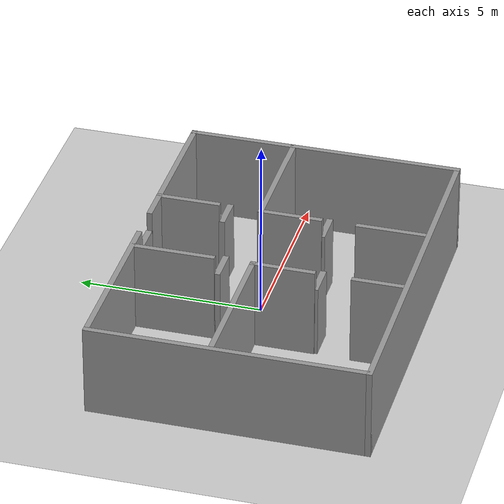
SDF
<?xml version='1.0'?>
<sdf version='1.7'>
  <world name='four_rooms_world'>
    <!-- Physics settings -->
    <physics name='default_physics' default='0' type='ode'>
      <gravity>0 0 -9.8066</gravity>
      <ode>
        <solver>
          <type>quick</type>
          <iters>150</iters>
          <sor>1.3</sor>
        </solver>
        <constraints>
          <cfm>0.00001</cfm>
          <erp>0.2</erp>
          <contact_max_correcting_vel>1000</contact_max_correcting_vel>
          <contact_surface_layer>0.01</contact_surface_layer>
        </constraints>
      </ode>
      <max_step_size>0.004</max_step_size>
      <real_time_factor>1</real_time_factor>
      <real_time_update_rate>250</real_time_update_rate>
    </physics>

    <!-- Scene settings -->
    <scene>
      <ambient>0.4 0.4 0.4 1</ambient>
      <background>0.7 0.7 0.7 1</background>
      <shadows>1</shadows>
    </scene>

    <!-- Lighting -->
    <light name='sun' type='directional'>
      <cast_shadows>1</cast_shadows>
      <pose>0 0 10 0 -0 0</pose>
      <diffuse>0.8 0.8 0.8 1</diffuse>
      <specular>0.2 0.2 0.2 1</specular>
      <attenuation>
        <range>1000</range>
        <constant>0.9</constant>
        <linear>0.01</linear>
        <quadratic>0.001</quadratic>
      </attenuation>
      <direction>-0.5 0.1 -0.9</direction>
    </light>

    <!-- Ground plane -->
    <model name='ground_plane'>
      <static>1</static>
      <link name='link'>
        <collision name='collision'>
          <geometry>
            <plane>
              <normal>0 0 1</normal>
              <size>100 100</size>
            </plane>
          </geometry>
          <surface>
            <contact>
              <collide_bitmask>65535</collide_bitmask>
              <ode/>
            </contact>
            <friction>
              <ode>
                <mu>100</mu>
                <mu2>50</mu2>
              </ode>
            </friction>
          </surface>
        </collision>
        <visual name='visual'>
          <cast_shadows>0</cast_shadows>
          <geometry>
            <plane>
              <normal>0 0 1</normal>
              <size>100 100</size>
            </plane>
          </geometry>
          <material>
            <script>
              <uri>file://media/materials/scripts/gazebo.material</uri>
              <name>Gazebo/Grey</name>
            </script>
          </material>
        </visual>
      </link>
    </model>

    <!-- Four rooms model -->
    <model name='four_rooms'>
      <pose>-0.595 -0.605 0 0 -0 0</pose>
      <link name='Door_0'>
        <collision name='Door_0_Collision'>
          <geometry>
            <box>
              <size>0.9 0.17 2</size>
            </box>
          </geometry>
          <pose>0 0 1 0 -0 0</pose>
        </collision>
        <visual name='Door_0_Visual'>
          <pose>0 0 1 0 -0 0</pose>
          <geometry>
            <box>
              <size>0.9 0.17 2</size>
            </box>
          </geometry>
          <material>
            <script>
              <uri>file://media/materials/scripts/gazebo.material</uri>
              <name>Gazebo/Grey</name>
            </script>
          </material>
        </visual>
        <pose>0.136092 3.66682 0 0 -0 0</pose>
      </link>
      <link name='Door_1'>
        <collision name='Door_1_Collision'>
          <geometry>
            <box>
              <size>0.9 0.17 2</size>
            </box>
          </geometry>
          <pose>0 0 1 0 -0 0</pose>
        </collision>
        <visual name='Door_1_Visual'>
          <pose>0 0 1 0 -0 0</pose>
          <geometry>
            <box>
              <size>0.9 0.17 2</size>
            </box>
          </geometry>
          <material>
            <script>
              <uri>file://media/materials/scripts/gazebo.material</uri>
              <name>Gazebo/Grey</name>
            </script>
          </material>
        </visual>
        <pose>1.94491 1.93781 0 0 -0 0</pose>
      </link>
      <link name='Door_2'>
        <collision name='Door_2_Collision'>
          <geometry>
            <box>
              <size>0.9 0.17 2</size>
            </box>
          </geometry>
          <pose>0 0 1 0 -0 0</pose>
        </collision>
        <visual name='Door_2_Visual'>
          <pose>0 0 1 0 -0 0</pose>
          <geometry>
            <box>
              <size>0.9 0.17 2</size>
            </box>
          </geometry>
          <material>
            <script>
              <uri>file://media/materials/scripts/gazebo.material</uri>
              <name>Gazebo/Grey</name>
            </script>
          </material>
        </visual>
        <pose>-0.502313 1.3792 0 0 -0 0</pose>
      </link>
      <link name='Door_5'>
        <collision name='Door_5_Collision'>
          <geometry>
            <box>
              <size>0.9 0.17 2</size>
            </box>
          </geometry>
          <pose>0 0 1 0 -0 0</pose>
        </collision>
        <visual name='Door_5_Visual'>
          <pose>0 0 1 0 -0 0</pose>
          <geometry>
            <box>
              <size>0.9 0.17 2</size>
            </box>
          </geometry>
          <material>
            <script>
              <uri>file://media/materials/scripts/gazebo.material</uri>
              <name>Gazebo/Grey</name>
            </script>
          </material>
        </visual>
        <pose>-0.528913 -1.25422 0 0 -0 0</pose>
      </link>
      <link name='Door_6'>
        <collision name='Door_6_Collision'>
          <geometry>
            <box>
              <size>0.9 0.17 2</size>
            </box>
          </geometry>
          <pose>0 0 1 0 -0 0</pose>
        </collision>
        <visual name='Door_6_Visual'>
          <pose>0 0 1 0 -0 0</pose>
          <geometry>
            <box>
              <size>0.9 0.17 2</size>
            </box>
          </geometry>
          <material>
            <script>
              <uri>file://media/materials/scripts/gazebo.material</uri>
              <name>Gazebo/Grey</name>
            </script>
          </material>
        </visual>
        <pose>1.94491 -0.802013 0 0 -0 0</pose>
      </link>
      <link name='Wall_1'>
        <collision name='Wall_1_Collision'>
          <geometry>
            <box>
              <size>10 0.15 2.5</size>
            </box>
          </geometry>
          <pose>0 0 1.25 0 -0 0</pose>
        </collision>
        <visual name='Wall_1_Visual'>
          <pose>0 0 1.25 0 -0 0</pose>
          <geometry>
            <box>
              <size>10 0.15 2.5</size>
            </box>
          </geometry>
          <material>
            <script>
              <uri>file://media/materials/scripts/gazebo.material</uri>
              <name>Gazebo/Grey</name>
            </script>
            <ambient>1 1 1 1</ambient>
          </material>
          <meta>
            <layer>0</layer>
          </meta>
        </visual>
        <pose>0 -3.675 0 0 -0 0</pose>
      </link>
      <link name='Wall_10'>
        <collision name='Wall_10_Collision'>
          <geometry>
            <box>
              <size>4.75 0.15 2.5</size>
            </box>
          </geometry>
          <pose>0 0 1.25 0 -0 0</pose>
        </collision>
        <visual name='Wall_10_Visual'>
          <pose>0 0 1.25 0 -0 0</pose>
          <geometry>
            <box>
              <size>4.75 0.15 2.5</size>
            </box>
          </geometry>
          <material>
            <script>
              <uri>file://media/materials/scripts/gazebo.material</uri>
              <name>Gazebo/Grey</name>
            </script>
            <ambient>1 1 1 1</ambient>
          </material>
          <meta>
            <layer>0</layer>
          </meta>
        </visual>
        <pose>-2.625 3.675 0 0 -0 0</pose>
      </link>
      <link name='Wall_12'>
        <collision name='Wall_12_Collision'>
          <geometry>
            <box>
              <size>3.5 0.15 2.5</size>
            </box>
          </geometry>
          <pose>0 0 1.25 0 -0 0</pose>
        </collision>
        <visual name='Wall_12_Visual'>
          <pose>0 0 1.25 0 -0 0</pose>
          <geometry>
            <box>
              <size>3.5 0.15 2.5</size>
            </box>
          </geometry>
          <material>
            <script>
              <uri>file://media/materials/scripts/gazebo.material</uri>
              <name>Gazebo/Grey</name>
            </script>
            <ambient>1 1 1 1</ambient>
          </material>
          <meta>
            <layer>0</layer>
          </meta>
        </visual>
        <pose>3.25 3.675 0 0 -0 3.14159</pose>
      </link>
      <link name='Wall_14'>
        <collision name='Wall_14_Collision'>
          <geometry>
            <box>
              <size>1 0.15 2.5</size>
            </box>
          </geometry>
          <pose>0 0 1.25 0 -0 0</pose>
        </collision>
        <visual name='Wall_14_Visual'>
          <pose>0 0 1.25 0 -0 0</pose>
          <geometry>
            <box>
              <size>1 0.15 2.5</size>
            </box>
          </geometry>
          <material>
            <script>
              <uri>file://media/materials/scripts/gazebo.material</uri>
              <name>Gazebo/Grey</name>
            </script>
            <ambient>1 1 1 1</ambient>
          </material>
          <meta>
            <layer>0</layer>
          </meta>
        </visual>
        <pose>1.15 3.675 0 0 -0 3.14159</pose>
      </link>
      <link name='Wall_17'>
        <collision name='Wall_17_Collision'>
          <geometry>
            <box>
              <size>1.75 0.15 2.5</size>
            </box>
          </geometry>
          <pose>0 0 1.25 0 -0 0</pose>
        </collision>
        <visual name='Wall_17_Visual'>
          <pose>0 0 1.25 0 -0 0</pose>
          <geometry>
            <box>
              <size>1.75 0.15 2.5</size>
            </box>
          </geometry>
          <material>
            <script>
              <uri>file://media/materials/scripts/gazebo.material</uri>
              <name>Gazebo/Grey</name>
            </script>
            <ambient>1 1 1 1</ambient>
          </material>
          <meta>
            <layer>0</layer>
          </meta>
        </visual>
        <pose>1.575 2.875 0 0 -0 -1.5708</pose>
      </link>
      <link name='Wall_19'>
        <collision name='Wall_19_Collision'>
          <geometry>
            <box>
              <size>3.5 0.15 2.5</size>
            </box>
          </geometry>
          <pose>0 0 1.25 0 -0 0</pose>
        </collision>
        <visual name='Wall_19_Visual'>
          <pose>0 0 1.25 0 -0 0</pose>
          <geometry>
            <box>
              <size>3.5 0.15 2.5</size>
            </box>
          </geometry>
          <material>
            <script>
              <uri>file://media/materials/scripts/gazebo.material</uri>
              <name>Gazebo/Grey</name>
            </script>
            <ambient>1 1 1 1</ambient>
          </material>
          <meta>
            <layer>0</layer>
          </meta>
        </visual>
        <pose>3.22253 0.8738 0 0 -0 3.14159</pose>
      </link>
      <link name='Wall_23'>
        <collision name='Wall_23_Collision'>
          <geometry>
            <box>
              <size>2.25 0.15 2.5</size>
            </box>
          </geometry>
          <pose>0 0 1.25 0 -0 0</pose>
        </collision>
        <visual name='Wall_23_Visual'>
          <pose>0 0 1.25 0 -0 0</pose>
          <geometry>
            <box>
              <size>2.25 0.15 2.5</size>
            </box>
          </geometry>
          <material>
            <script>
              <uri>file://media/materials/scripts/gazebo.material</uri>
              <name>Gazebo/Grey</name>
            </script>
            <ambient>1 1 1 1</ambient>
          </material>
          <meta>
            <layer>0</layer>
          </meta>
        </visual>
        <pose>-0.927916 2.56362 0 0 -0 -1.5708</pose>
      </link>
      <link name='Wall_26'>
        <collision name='Wall_26_Collision'>
          <geometry>
            <box>
              <size>4 0.15 2.5</size>
            </box>
          </geometry>
          <pose>0 0 1.25 0 -0 0</pose>
        </collision>
        <visual name='Wall_26_Visual'>
          <pose>0 0 1.25 0 -0 0</pose>
          <geometry>
            <box>
              <size>4 0.15 2.5</size>
            </box>
          </geometry>
          <material>
            <script>
              <uri>file://media/materials/scripts/gazebo.material</uri>
              <name>Gazebo/Grey</name>
            </script>
            <ambient>1 1 1 1</ambient>
          </material>
          <meta>
            <layer>0</layer>
          </meta>
        </visual>
        <pose>-2.85292 0.421597 0 0 -0 3.14159</pose>
      </link>
      <link name='Wall_28'>
        <collision name='Wall_28_Collision'>
          <geometry>
            <box>
              <size>1.75 0.15 2.5</size>
            </box>
          </geometry>
          <pose>0 0 1.25 0 -0 0</pose>
        </collision>
        <visual name='Wall_28_Visual'>
          <pose>0 0 1.25 0 -0 0</pose>
          <geometry>
            <box>
              <size>1.75 0.15 2.5</size>
            </box>
          </geometry>
          <material>
            <script>
              <uri>file://media/materials/scripts/gazebo.material</uri>
              <name>Gazebo/Grey</name>
            </script>
            <ambient>1 1 1 1</ambient>
          </material>
          <meta>
            <layer>0</layer>
          </meta>
        </visual>
        <pose>-0.927916 -0.378403 0 0 -0 -1.5708</pose>
      </link>
      <link name='Wall_30'>
        <collision name='Wall_30_Collision'>
          <geometry>
            <box>
              <size>1.5 0.15 2.5</size>
            </box>
          </geometry>
          <pose>0 0 1.25 0 -0 0</pose>
        </collision>
        <visual name='Wall_30_Visual'>
          <pose>0 0 1.25 0 -0 0</pose>
          <geometry>
            <box>
              <size>1.5 0.15 2.5</size>
            </box>
          </geometry>
          <material>
            <script>
              <uri>file://media/materials/scripts/gazebo.material</uri>
              <name>Gazebo/Grey</name>
            </script>
            <ambient>1 1 1 1</ambient>
          </material>
          <meta>
            <layer>0</layer>
          </meta>
        </visual>
        <pose>-0.954516 -2.96662 0 0 -0 -1.5708</pose>
      </link>
      <link name='Wall_32'>
        <collision name='Wall_32_Collision'>
          <geometry>
            <box>
              <size>1.75 0.15 2.5</size>
            </box>
          </geometry>
          <pose>0 0 1.25 0 -0 0</pose>
        </collision>
        <visual name='Wall_32_Visual'>
          <pose>0 0 1.25 0 -0 0</pose>
          <geometry>
            <box>
              <size>1.75 0.15 2.5</size>
            </box>
          </geometry>
          <material>
            <script>
              <uri>file://media/materials/scripts/gazebo.material</uri>
              <name>Gazebo/Grey</name>
            </script>
            <ambient>1 1 1 1</ambient>
          </material>
          <meta>
            <layer>0</layer>
          </meta>
        </visual>
        <pose>1.54753 0.0738 0 0 -0 -1.5708</pose>
      </link>
      <link name='Wall_34'>
        <collision name='Wall_34_Collision'>
          <geometry>
            <box>
              <size>2 0.15 2.5</size>
            </box>
          </geometry>
          <pose>0 0 1.25 0 -0 0</pose>
        </collision>
        <visual name='Wall_34_Visual'>
          <pose>0 0 1.25 0 -0 0</pose>
          <geometry>
            <box>
              <size>2 0.15 2.5</size>
            </box>
          </geometry>
          <material>
            <script>
              <uri>file://media/materials/scripts/gazebo.material</uri>
              <name>Gazebo/Grey</name>
            </script>
            <ambient>1 1 1 1</ambient>
          </material>
          <meta>
            <layer>0</layer>
          </meta>
        </visual>
        <pose>1.5459 -2.71122 0 0 -0 -1.5708</pose>
      </link>
      <link name='Wall_4'>
        <collision name='Wall_4_Collision'>
          <geometry>
            <box>
              <size>7.5 0.15 2.5</size>
            </box>
          </geometry>
          <pose>0 0 1.25 0 -0 0</pose>
        </collision>
        <visual name='Wall_4_Visual'>
          <pose>0 0 1.25 0 -0 0</pose>
          <geometry>
            <box>
              <size>7.5 0.15 2.5</size>
            </box>
          </geometry>
          <material>
            <script>
              <uri>file://media/materials/scripts/gazebo.material</uri>
              <name>Gazebo/Grey</name>
            </script>
            <ambient>1 1 1 1</ambient>
          </material>
          <meta>
            <layer>0</layer>
          </meta>
        </visual>
        <pose>-4.925 0 0 0 -0 1.5708</pose>
      </link>
      <link name='Wall_7'>
        <collision name='Wall_7_Collision'>
          <geometry>
            <box>
              <size>0.15 0.15 2.5</size>
            </box>
          </geometry>
          <pose>0 0 1.25 0 -0 0</pose>
        </collision>
        <visual name='Wall_7_Visual'>
          <pose>0 0 1.25 0 -0 0</pose>
          <geometry>
            <box>
              <size>0.15 0.15 2.5</size>
            </box>
          </geometry>
          <material>
            <script>
              <uri>file://media/materials/scripts/gazebo.material</uri>
              <name>Gazebo/Grey</name>
            </script>
            <ambient>1 1 1 1</ambient>
          </material>
          <meta>
            <layer>0</layer>
          </meta>
        </visual>
        <pose>4.925 3.675 0 0 -0 0</pose>
      </link>
      <link name='Wall_8'>
        <collision name='Wall_8_Collision'>
          <geometry>
            <box>
              <size>7.5 0.15 2.5</size>
            </box>
          </geometry>
          <pose>0 0 1.25 0 -0 0</pose>
        </collision>
        <visual name='Wall_8_Visual'>
          <pose>0 0 1.25 0 -0 0</pose>
          <geometry>
            <box>
              <size>7.5 0.15 2.5</size>
            </box>
          </geometry>
          <material>
            <script>
              <uri>file://media/materials/scripts/gazebo.material</uri>
              <name>Gazebo/Grey</name>
            </script>
            <ambient>1 1 1 1</ambient>
          </material>
          <meta>
            <layer>0</layer>
          </meta>
        </visual>
        <pose>4.925 0 0 0 -0 -1.5708</pose>
      </link>
      <static>1</static>
    </model>

    <!-- GUI settings -->
    <gui fullscreen='0'>
      <camera name='user_camera'>
        <pose>5 -5 2 0 0.275643 2.35619</pose>
        <view_controller>orbit</view_controller>
      </camera>
    </gui>
  </world>
</sdf>
